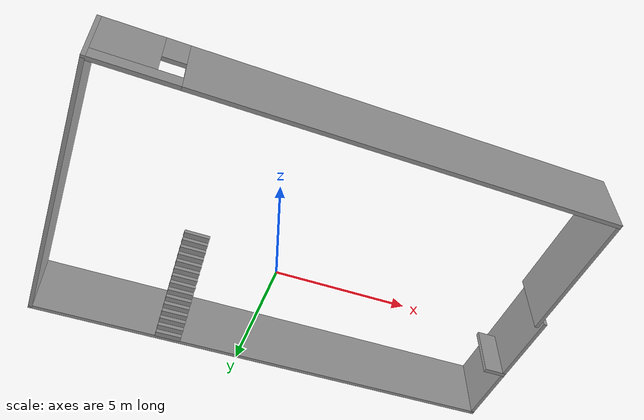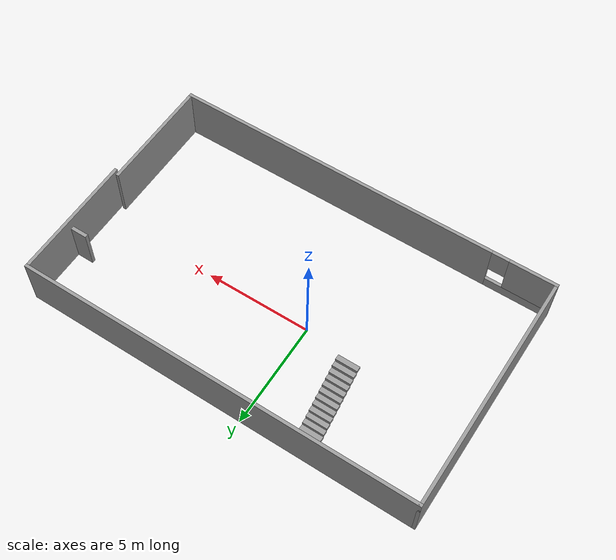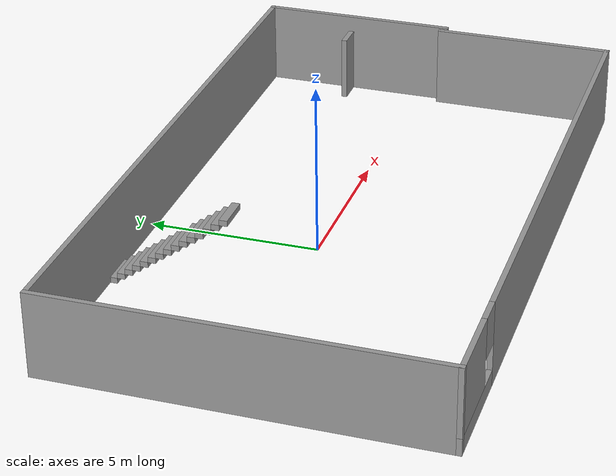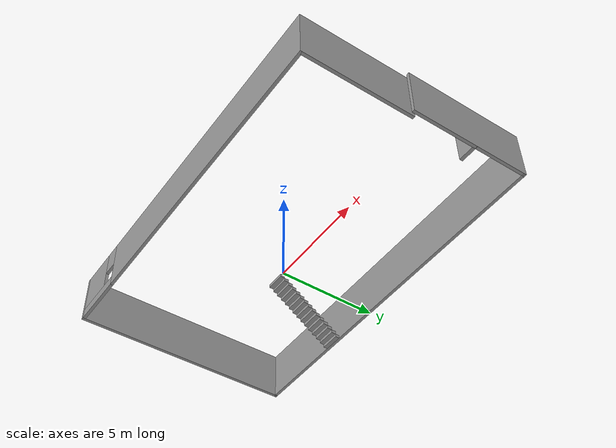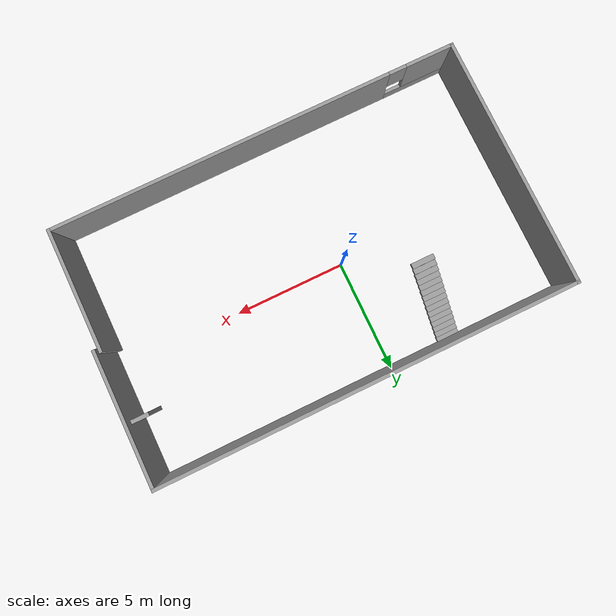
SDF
<?xml version='1.0'?>
<sdf version='1.7'>
  <model name='Untitled'>
    <pose>1.24 -0.62 0 0 -0 0</pose>
    <link name='Door_0'>
      <collision name='Door_0_Collision'>
        <geometry>
          <box>
            <size>0.9 0.17 2</size>
          </box>
        </geometry>
        <pose>0 0 1 0 -0 0</pose>
      </collision>
      <visual name='Door_0_Visual'>
        <pose>0 0 1 0 -0 0</pose>
        <geometry>
          <box>
            <size>0.9 0.17 2</size>
          </box>
        </geometry>
        <material>
          <script>
            <uri>file://media/materials/scripts/gazebo.material</uri>
            <name>Gazebo/Grey</name>
          </script>
        </material>
      </visual>
      <pose>8.89467 2.84821 0 0 -0 0</pose>
    </link>
    <link name='Stairs_0'>
      <visual name='Stairs_0_Visual_0'>
        <pose>-4.05847 5.38665 0.083333 0 -0 0</pose>
        <geometry>
          <box>
            <size>1 0.233333 0.166667</size>
          </box>
        </geometry>
        <material>
          <script>
            <uri>file://media/materials/scripts/gazebo.material</uri>
            <name>Gazebo/Grey</name>
          </script>
          <ambient>1 1 1 1</ambient>
        </material>
        <meta>
          <layer>0</layer>
        </meta>
      </visual>
      <collision name='Stairs_0_Collision_0'>
        <geometry>
          <box>
            <size>1 0.233333 0.166667</size>
          </box>
        </geometry>
        <pose>-4.05847 5.38665 0.083333 0 -0 0</pose>
      </collision>
      <visual name='Stairs_0_Visual_1'>
        <pose>-4.05847 5.15332 0.25 0 -0 0</pose>
        <geometry>
          <box>
            <size>1 0.233333 0.166667</size>
          </box>
        </geometry>
        <material>
          <script>
            <uri>file://media/materials/scripts/gazebo.material</uri>
            <name>Gazebo/Grey</name>
          </script>
          <ambient>1 1 1 1</ambient>
        </material>
        <meta>
          <layer>0</layer>
        </meta>
      </visual>
      <collision name='Stairs_0_Collision_1'>
        <geometry>
          <box>
            <size>1 0.233333 0.166667</size>
          </box>
        </geometry>
        <pose>-4.05847 5.15332 0.25 0 -0 0</pose>
      </collision>
      <visual name='Stairs_0_Visual_2'>
        <pose>-4.05847 4.91998 0.416667 0 -0 0</pose>
        <geometry>
          <box>
            <size>1 0.233333 0.166667</size>
          </box>
        </geometry>
        <material>
          <script>
            <uri>file://media/materials/scripts/gazebo.material</uri>
            <name>Gazebo/Grey</name>
          </script>
          <ambient>1 1 1 1</ambient>
        </material>
        <meta>
          <layer>0</layer>
        </meta>
      </visual>
      <collision name='Stairs_0_Collision_2'>
        <geometry>
          <box>
            <size>1 0.233333 0.166667</size>
          </box>
        </geometry>
        <pose>-4.05847 4.91998 0.416667 0 -0 0</pose>
      </collision>
      <visual name='Stairs_0_Visual_3'>
        <pose>-4.05847 4.68665 0.583333 0 -0 0</pose>
        <geometry>
          <box>
            <size>1 0.233333 0.166667</size>
          </box>
        </geometry>
        <material>
          <script>
            <uri>file://media/materials/scripts/gazebo.material</uri>
            <name>Gazebo/Grey</name>
          </script>
          <ambient>1 1 1 1</ambient>
        </material>
        <meta>
          <layer>0</layer>
        </meta>
      </visual>
      <collision name='Stairs_0_Collision_3'>
        <geometry>
          <box>
            <size>1 0.233333 0.166667</size>
          </box>
        </geometry>
        <pose>-4.05847 4.68665 0.583333 0 -0 0</pose>
      </collision>
      <visual name='Stairs_0_Visual_4'>
        <pose>-4.05847 4.45332 0.75 0 -0 0</pose>
        <geometry>
          <box>
            <size>1 0.233333 0.166667</size>
          </box>
        </geometry>
        <material>
          <script>
            <uri>file://media/materials/scripts/gazebo.material</uri>
            <name>Gazebo/Grey</name>
          </script>
          <ambient>1 1 1 1</ambient>
        </material>
        <meta>
          <layer>0</layer>
        </meta>
      </visual>
      <collision name='Stairs_0_Collision_4'>
        <geometry>
          <box>
            <size>1 0.233333 0.166667</size>
          </box>
        </geometry>
        <pose>-4.05847 4.45332 0.75 0 -0 0</pose>
      </collision>
      <visual name='Stairs_0_Visual_5'>
        <pose>-4.05847 4.21998 0.916667 0 -0 0</pose>
        <geometry>
          <box>
            <size>1 0.233333 0.166667</size>
          </box>
        </geometry>
        <material>
          <script>
            <uri>file://media/materials/scripts/gazebo.material</uri>
            <name>Gazebo/Grey</name>
          </script>
          <ambient>1 1 1 1</ambient>
        </material>
        <meta>
          <layer>0</layer>
        </meta>
      </visual>
      <collision name='Stairs_0_Collision_5'>
        <geometry>
          <box>
            <size>1 0.233333 0.166667</size>
          </box>
        </geometry>
        <pose>-4.05847 4.21998 0.916667 0 -0 0</pose>
      </collision>
      <visual name='Stairs_0_Visual_6'>
        <pose>-4.05847 3.98665 1.08333 0 -0 0</pose>
        <geometry>
          <box>
            <size>1 0.233333 0.166667</size>
          </box>
        </geometry>
        <material>
          <script>
            <uri>file://media/materials/scripts/gazebo.material</uri>
            <name>Gazebo/Grey</name>
          </script>
          <ambient>1 1 1 1</ambient>
        </material>
        <meta>
          <layer>0</layer>
        </meta>
      </visual>
      <collision name='Stairs_0_Collision_6'>
        <geometry>
          <box>
            <size>1 0.233333 0.166667</size>
          </box>
        </geometry>
        <pose>-4.05847 3.98665 1.08333 0 -0 0</pose>
      </collision>
      <visual name='Stairs_0_Visual_7'>
        <pose>-4.05847 3.75332 1.25 0 -0 0</pose>
        <geometry>
          <box>
            <size>1 0.233333 0.166667</size>
          </box>
        </geometry>
        <material>
          <script>
            <uri>file://media/materials/scripts/gazebo.material</uri>
            <name>Gazebo/Grey</name>
          </script>
          <ambient>1 1 1 1</ambient>
        </material>
        <meta>
          <layer>0</layer>
        </meta>
      </visual>
      <collision name='Stairs_0_Collision_7'>
        <geometry>
          <box>
            <size>1 0.233333 0.166667</size>
          </box>
        </geometry>
        <pose>-4.05847 3.75332 1.25 0 -0 0</pose>
      </collision>
      <visual name='Stairs_0_Visual_8'>
        <pose>-4.05847 3.51998 1.41667 0 -0 0</pose>
        <geometry>
          <box>
            <size>1 0.233333 0.166667</size>
          </box>
        </geometry>
        <material>
          <script>
            <uri>file://media/materials/scripts/gazebo.material</uri>
            <name>Gazebo/Grey</name>
          </script>
          <ambient>1 1 1 1</ambient>
        </material>
        <meta>
          <layer>0</layer>
        </meta>
      </visual>
      <collision name='Stairs_0_Collision_8'>
        <geometry>
          <box>
            <size>1 0.233333 0.166667</size>
          </box>
        </geometry>
        <pose>-4.05847 3.51998 1.41667 0 -0 0</pose>
      </collision>
      <visual name='Stairs_0_Visual_9'>
        <pose>-4.05847 3.28665 1.58333 0 -0 0</pose>
        <geometry>
          <box>
            <size>1 0.233333 0.166667</size>
          </box>
        </geometry>
        <material>
          <script>
            <uri>file://media/materials/scripts/gazebo.material</uri>
            <name>Gazebo/Grey</name>
          </script>
          <ambient>1 1 1 1</ambient>
        </material>
        <meta>
          <layer>0</layer>
        </meta>
      </visual>
      <collision name='Stairs_0_Collision_9'>
        <geometry>
          <box>
            <size>1 0.233333 0.166667</size>
          </box>
        </geometry>
        <pose>-4.05847 3.28665 1.58333 0 -0 0</pose>
      </collision>
      <visual name='Stairs_0_Visual_10'>
        <pose>-4.05847 3.05332 1.75 0 -0 0</pose>
        <geometry>
          <box>
            <size>1 0.233333 0.166667</size>
          </box>
        </geometry>
        <material>
          <script>
            <uri>file://media/materials/scripts/gazebo.material</uri>
            <name>Gazebo/Grey</name>
          </script>
          <ambient>1 1 1 1</ambient>
        </material>
        <meta>
          <layer>0</layer>
        </meta>
      </visual>
      <collision name='Stairs_0_Collision_10'>
        <geometry>
          <box>
            <size>1 0.233333 0.166667</size>
          </box>
        </geometry>
        <pose>-4.05847 3.05332 1.75 0 -0 0</pose>
      </collision>
      <visual name='Stairs_0_Visual_11'>
        <pose>-4.05847 2.81998 1.91667 0 -0 0</pose>
        <geometry>
          <box>
            <size>1 0.233333 0.166667</size>
          </box>
        </geometry>
        <material>
          <script>
            <uri>file://media/materials/scripts/gazebo.material</uri>
            <name>Gazebo/Grey</name>
          </script>
          <ambient>1 1 1 1</ambient>
        </material>
        <meta>
          <layer>0</layer>
        </meta>
      </visual>
      <collision name='Stairs_0_Collision_11'>
        <geometry>
          <box>
            <size>1 0.233333 0.166667</size>
          </box>
        </geometry>
        <pose>-4.05847 2.81998 1.91667 0 -0 0</pose>
      </collision>
      <visual name='Stairs_0_Visual_12'>
        <pose>-4.05847 2.58665 2.08333 0 -0 0</pose>
        <geometry>
          <box>
            <size>1 0.233333 0.166667</size>
          </box>
        </geometry>
        <material>
          <script>
            <uri>file://media/materials/scripts/gazebo.material</uri>
            <name>Gazebo/Grey</name>
          </script>
          <ambient>1 1 1 1</ambient>
        </material>
        <meta>
          <layer>0</layer>
        </meta>
      </visual>
      <collision name='Stairs_0_Collision_12'>
        <geometry>
          <box>
            <size>1 0.233333 0.166667</size>
          </box>
        </geometry>
        <pose>-4.05847 2.58665 2.08333 0 -0 0</pose>
      </collision>
      <visual name='Stairs_0_Visual_13'>
        <pose>-4.05847 2.35332 2.25 0 -0 0</pose>
        <geometry>
          <box>
            <size>1 0.233333 0.166667</size>
          </box>
        </geometry>
        <material>
          <script>
            <uri>file://media/materials/scripts/gazebo.material</uri>
            <name>Gazebo/Grey</name>
          </script>
          <ambient>1 1 1 1</ambient>
        </material>
        <meta>
          <layer>0</layer>
        </meta>
      </visual>
      <collision name='Stairs_0_Collision_13'>
        <geometry>
          <box>
            <size>1 0.233333 0.166667</size>
          </box>
        </geometry>
        <pose>-4.05847 2.35332 2.25 0 -0 0</pose>
      </collision>
      <visual name='Stairs_0_Visual_14'>
        <pose>-4.05847 2.11998 2.41667 0 -0 0</pose>
        <geometry>
          <box>
            <size>1 0.233333 0.166667</size>
          </box>
        </geometry>
        <material>
          <script>
            <uri>file://media/materials/scripts/gazebo.material</uri>
            <name>Gazebo/Grey</name>
          </script>
          <ambient>1 1 1 1</ambient>
        </material>
        <meta>
          <layer>0</layer>
        </meta>
      </visual>
      <collision name='Stairs_0_Collision_14'>
        <geometry>
          <box>
            <size>1 0.233333 0.166667</size>
          </box>
        </geometry>
        <pose>-4.05847 2.11998 2.41667 0 -0 0</pose>
      </collision>
    </link>
    <link name='Wall_2'>
      <collision name='Wall_2_Collision'>
        <geometry>
          <box>
            <size>5.5 0.15 2.5</size>
          </box>
        </geometry>
        <pose>0 0 1.25 0 -0 0</pose>
      </collision>
      <visual name='Wall_2_Visual'>
        <pose>0 0 1.25 0 -0 0</pose>
        <geometry>
          <box>
            <size>5.5 0.15 2.5</size>
          </box>
        </geometry>
        <material>
          <script>
            <uri>file://media/materials/scripts/gazebo.material</uri>
            <name>Gazebo/Grey</name>
          </script>
          <ambient>1 1 1 1</ambient>
        </material>
        <meta>
          <layer>0</layer>
        </meta>
      </visual>
      <pose>9.05 -2.875 0 0 -0 1.5708</pose>
    </link>
    <link name='Wall_5'>
      <pose>-0.125 -5.55 0 0 -0 3.14159</pose>
      <visual name='Wall_5_Visual_0'>
        <pose>-1.51065 0 1.25 0 -0 0</pose>
        <geometry>
          <box>
            <size>15.4787 0.15 2.5</size>
          </box>
        </geometry>
        <material>
          <script>
            <uri>file://media/materials/scripts/gazebo.material</uri>
            <name>Gazebo/Grey</name>
          </script>
          <ambient>1 1 1 1</ambient>
        </material>
        <meta>
          <layer>0</layer>
        </meta>
      </visual>
      <collision name='Wall_5_Collision_0'>
        <geometry>
          <box>
            <size>15.4787 0.15 2.5</size>
          </box>
        </geometry>
        <pose>-1.51065 0 1.25 0 -0 0</pose>
      </collision>
      <visual name='Wall_5_Visual_1'>
        <pose>7.73935 0 0.25 0 -0 0</pose>
        <geometry>
          <box>
            <size>3.02131 0.15 0.5</size>
          </box>
        </geometry>
        <material>
          <script>
            <uri>file://media/materials/scripts/gazebo.material</uri>
            <name>Gazebo/Grey</name>
          </script>
          <ambient>1 1 1 1</ambient>
        </material>
        <meta>
          <layer>0</layer>
        </meta>
      </visual>
      <collision name='Wall_5_Collision_1'>
        <geometry>
          <box>
            <size>3.02131 0.15 0.5</size>
          </box>
        </geometry>
        <pose>7.73935 0 0.25 0 -0 0</pose>
      </collision>
      <visual name='Wall_5_Visual_2'>
        <pose>8.13935 0 1.5 0 -0 0</pose>
        <geometry>
          <box>
            <size>2.22131 0.15 2</size>
          </box>
        </geometry>
        <material>
          <script>
            <uri>file://media/materials/scripts/gazebo.material</uri>
            <name>Gazebo/Grey</name>
          </script>
          <ambient>1 1 1 1</ambient>
        </material>
        <meta>
          <layer>0</layer>
        </meta>
      </visual>
      <collision name='Wall_5_Collision_2'>
        <geometry>
          <box>
            <size>2.22131 0.15 2</size>
          </box>
        </geometry>
        <pose>8.13935 0 1.5 0 -0 0</pose>
      </collision>
      <visual name='Wall_5_Visual_3'>
        <pose>6.62869 0 1.9 0 -0 0</pose>
        <geometry>
          <box>
            <size>0.8 0.15 1.2</size>
          </box>
        </geometry>
        <material>
          <script>
            <uri>file://media/materials/scripts/gazebo.material</uri>
            <name>Gazebo/Grey</name>
          </script>
          <ambient>1 1 1 1</ambient>
        </material>
        <meta>
          <layer>0</layer>
        </meta>
      </visual>
      <collision name='Wall_5_Collision_3'>
        <geometry>
          <box>
            <size>0.8 0.15 1.2</size>
          </box>
        </geometry>
        <pose>6.62869 0 1.9 0 -0 0</pose>
      </collision>
    </link>
    <link name='Wall_6'>
      <collision name='Wall_6_Collision'>
        <geometry>
          <box>
            <size>11.25 0.15 2.5</size>
          </box>
        </geometry>
        <pose>0 0 1.25 0 -0 0</pose>
      </collision>
      <visual name='Wall_6_Visual'>
        <pose>0 0 1.25 0 -0 0</pose>
        <geometry>
          <box>
            <size>11.25 0.15 2.5</size>
          </box>
        </geometry>
        <material>
          <script>
            <uri>file://media/materials/scripts/gazebo.material</uri>
            <name>Gazebo/Grey</name>
          </script>
          <ambient>1 1 1 1</ambient>
        </material>
        <meta>
          <layer>0</layer>
        </meta>
      </visual>
      <pose>-9.3 -0 0 0 -0 1.5708</pose>
    </link>
    <link name='Wall_7'>
      <collision name='Wall_7_Collision'>
        <geometry>
          <box>
            <size>18.75 0.15 2.5</size>
          </box>
        </geometry>
        <pose>0 0 1.25 0 -0 0</pose>
      </collision>
      <visual name='Wall_7_Visual'>
        <pose>0 0 1.25 0 -0 0</pose>
        <geometry>
          <box>
            <size>18.75 0.15 2.5</size>
          </box>
        </geometry>
        <material>
          <script>
            <uri>file://media/materials/scripts/gazebo.material</uri>
            <name>Gazebo/Grey</name>
          </script>
          <ambient>1 1 1 1</ambient>
        </material>
        <meta>
          <layer>0</layer>
        </meta>
      </visual>
      <pose>0 5.55 0 0 -0 0</pose>
    </link>
    <link name='Wall_8'>
      <collision name='Wall_8_Collision'>
        <geometry>
          <box>
            <size>6 0.15 2.5</size>
          </box>
        </geometry>
        <pose>0 0 1.25 0 -0 0</pose>
      </collision>
      <visual name='Wall_8_Visual'>
        <pose>0 0 1.25 0 -0 0</pose>
        <geometry>
          <box>
            <size>6 0.15 2.5</size>
          </box>
        </geometry>
        <material>
          <script>
            <uri>file://media/materials/scripts/gazebo.material</uri>
            <name>Gazebo/Grey</name>
          </script>
          <ambient>1 1 1 1</ambient>
        </material>
        <meta>
          <layer>0</layer>
        </meta>
      </visual>
      <pose>9.3 2.625 0 0 -0 -1.5708</pose>
    </link>
    <static>1</static>
  </model>
</sdf>
